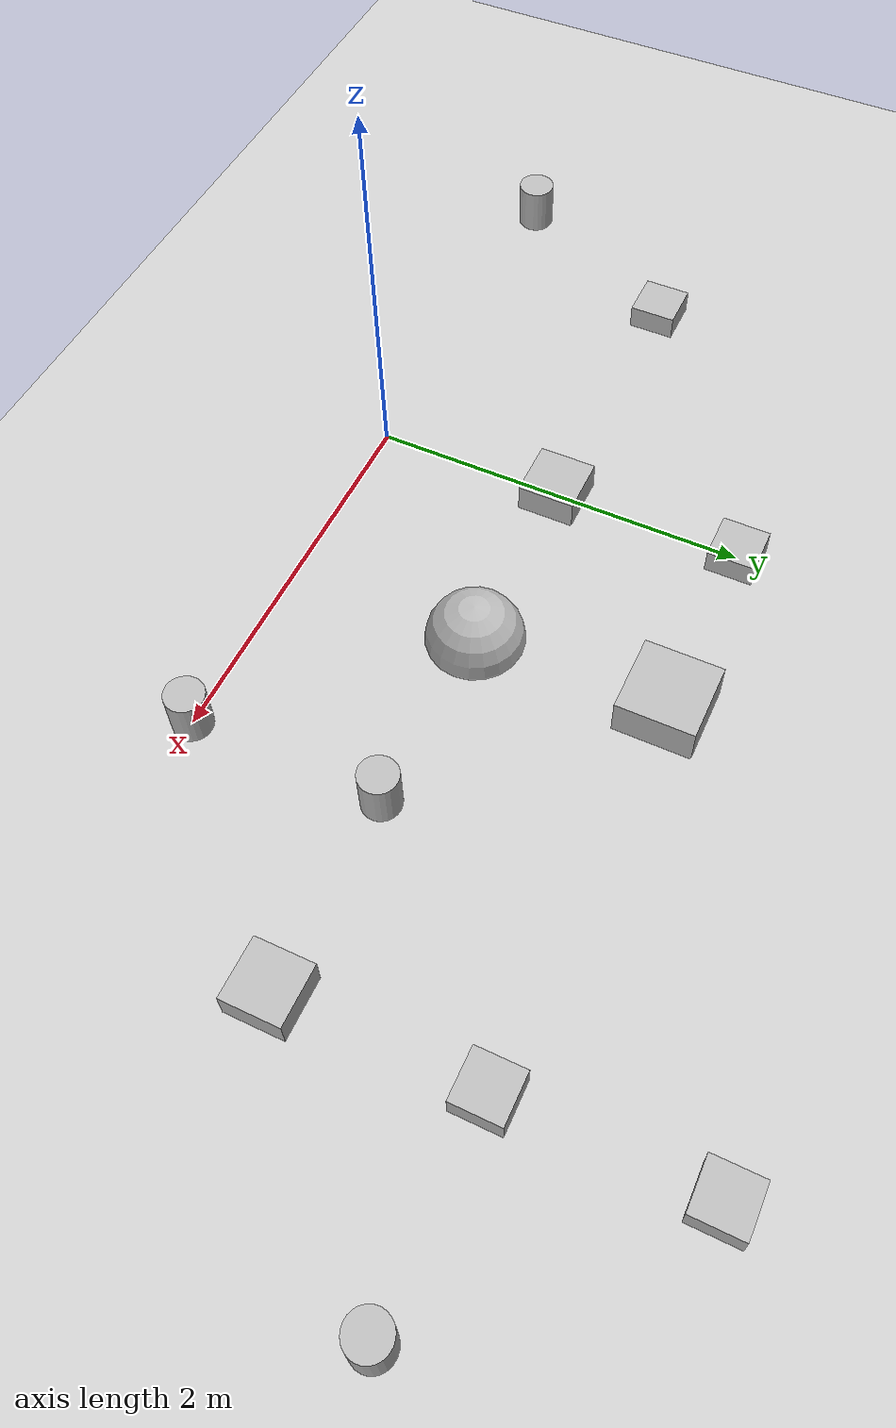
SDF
<sdf version='1.6'>
	<world name='default'>
		<!-- A global light source -->
	    <include>
	      <uri>model://sun</uri>
	    </include>

	    <!-- A ground plane -->
	    <include>
	      <uri>model://ground_plane</uri>
	    </include>

	    <model name='cylinder_1'>
	    	<link name="link">
	    		 <pose frame=''>2 0 0 0 0 0</pose>
	    		 <inertial>
			        <mass>1</mass>
			        <inertia>
			          <ixx>0.166667</ixx>
			          <ixy>0</ixy>
			          <ixz>0</ixz>
			          <iyy>0.166667</iyy>
			          <iyz>0</iyz>
			          <izz>0.166667</izz>
			        </inertia>
			      </inertial>
	    		 <visual name='visual'>
					<geometry>
						<cylinder>
							<radius>0.1</radius>
							<length>0.5</length>
						</cylinder>
					</geometry>
				</visual>
				<collision name='collision'>
					<geometry>
						<cylinder>
							<radius>0.1</radius>
							<length>0.5</length>
						</cylinder>
					</geometry>
				</collision>
			</link>
		</model>

		<model name='cylinder_2'>
	    	<link name="link">
	    		 <pose frame=''>2 1 0 0 0 0</pose>
	    		 <inertial>
			        <mass>1</mass>
			        <inertia>
			          <ixx>0.166667</ixx>
			          <ixy>0</ixy>
			          <ixz>0</ixz>
			          <iyy>0.166667</iyy>
			          <iyz>0</iyz>
			          <izz>0.166667</izz>
			        </inertia>
			      </inertial>
	    		 <visual name='visual'>
					<geometry>
						<cylinder>
							<radius>0.1</radius>
							<length>0.5</length>
						</cylinder>
					</geometry>
				</visual>
				<collision name='collision'>
					<geometry>
						<cylinder>
							<radius>0.1</radius>
							<length>0.5</length>
						</cylinder>
					</geometry>
				</collision>
			</link>
		</model>

		<model name='cylinder_3'>
	    	<link name="link">
	    		 <pose frame=''>4 2 0 0 0 0</pose>
	    		 <inertial>
			        <mass>1</mass>
			        <inertia>
			          <ixx>0.166667</ixx>
			          <ixy>0</ixy>
			          <ixz>0</ixz>
			          <iyy>0.166667</iyy>
			          <iyz>0</iyz>
			          <izz>0.166667</izz>
			        </inertia>
			      </inertial>
	    		 <visual name='visual'>
					<geometry>
						<cylinder>
							<radius>0.1</radius>
							<length>0.5</length>
						</cylinder>
					</geometry>
				</visual>
				<collision name='collision'>
					<geometry>
						<cylinder>
							<radius>0.1</radius>
							<length>0.5</length>
						</cylinder>
					</geometry>
				</collision>
			</link>
		</model>

		<model name='cylinder_4'>
	    	<link name="link">
	    		 <pose frame=''>-2 0 0 0 0 0</pose>
	    		 <inertial>
			        <mass>1</mass>
			        <inertia>
			          <ixx>0.166667</ixx>
			          <ixy>0</ixy>
			          <ixz>0</ixz>
			          <iyy>0.166667</iyy>
			          <iyz>0</iyz>
			          <izz>0.166667</izz>
			        </inertia>
			      </inertial>
	    		 <visual name='visual'>
					<geometry>
						<cylinder>
							<radius>0.1</radius>
							<length>0.5</length>
						</cylinder>
					</geometry>
				</visual>
				<collision name='collision'>
					<geometry>
						<cylinder>
							<radius>0.1</radius>
							<length>0.5</length>
						</cylinder>
					</geometry>
				</collision>
			</link>
		</model>

		<model name='cube_1'>
	    	<link name="link">
	    		 <pose frame=''>3 2 0 0 0 0</pose>
	    		 <inertial>
			        <mass>1</mass>
			        <inertia>
			          <ixx>0.166667</ixx>
			          <ixy>0</ixy>
			          <ixz>0</ixz>
			          <iyy>0.166667</iyy>
			          <iyz>0</iyz>
			          <izz>0.166667</izz>
			        </inertia>
			      </inertial>
	    		 <visual name='visual'>
					<geometry>
						<box>
							<size>0.25 0.25 0.25</size>
						</box>
					</geometry>
				</visual>
				<collision name='collision'>
					<geometry>
						<cylinder>
							<radius>0.1</radius>
							<length>0.5</length>
						</cylinder>
					</geometry>
				</collision>
			</link>
		</model>

		<model name='cube_2'>
	    	<link name="link">
	    		 <pose frame=''>-1.5 1 0 0 0 0</pose>
	    		 <inertial>
			        <mass>1</mass>
			        <inertia>
			          <ixx>0.166667</ixx>
			          <ixy>0</ixy>
			          <ixz>0</ixz>
			          <iyy>0.166667</iyy>
			          <iyz>0</iyz>
			          <izz>0.166667</izz>
			        </inertia>
			      </inertial>
	    		 <visual name='visual'>
					<geometry>
						<box>
							<size>0.25 0.25 0.25</size>
						</box>
					</geometry>
				</visual>
				<collision name='collision'>
					<geometry>
						<cylinder>
							<radius>0.1</radius>
							<length>0.5</length>
						</cylinder>
					</geometry>
				</collision>
			</link>
		</model>

		<model name='cube_3'>
	    	<link name="link">
	    		 <pose frame=''>0 2 0 0 0 0</pose>
	    		 <inertial>
			        <mass>1</mass>
			        <inertia>
			          <ixx>0.166667</ixx>
			          <ixy>0</ixy>
			          <ixz>0</ixz>
			          <iyy>0.166667</iyy>
			          <iyz>0</iyz>
			          <izz>0.166667</izz>
			        </inertia>
			      </inertial>
	    		 <visual name='visual'>
					<geometry>
						<box>
							<size>0.25 0.25 0.25</size>
						</box>
					</geometry>
				</visual>
				<collision name='collision'>
					<geometry>
						<cylinder>
							<radius>0.1</radius>
							<length>0.5</length>
						</cylinder>
					</geometry>
				</collision>
			</link>
		</model>

		<model name='cube_4'>
	    	<link name="link">
	    		 <pose frame=''>3 3 0 0 0 0</pose>
	    		 <inertial>
			        <mass>1</mass>
			        <inertia>
			          <ixx>0.166667</ixx>
			          <ixy>0</ixy>
			          <ixz>0</ixz>
			          <iyy>0.166667</iyy>
			          <iyz>0</iyz>
			          <izz>0.166667</izz>
			        </inertia>
			      </inertial>
	    		 <visual name='visual'>
					<geometry>
						<box>
							<size>0.25 0.25 0.25</size>
						</box>
					</geometry>
				</visual>
				<collision name='collision'>
					<geometry>
						<cylinder>
							<radius>0.1</radius>
							<length>0.5</length>
						</cylinder>
					</geometry>
				</collision>
			</link>
		</model>

		<model name='cube_4'>
	    	<link name="link">
	    		 <pose frame=''>3 1 0 0 0 0</pose>
	    		 <inertial>
			        <mass>1</mass>
			        <inertia>
			          <ixx>0.166667</ixx>
			          <ixy>0</ixy>
			          <ixz>0</ixz>
			          <iyy>0.166667</iyy>
			          <iyz>0</iyz>
			          <izz>0.166667</izz>
			        </inertia>
			      </inertial>
	    		 <visual name='visual'>
					<geometry>
						<box>
							<size>0.3 0.3 0.3</size>
						</box>
					</geometry>
				</visual>
				<collision name='collision'>
					<geometry>
						<cylinder>
							<radius>0.1</radius>
							<length>0.5</length>
						</cylinder>
					</geometry>
				</collision>
			</link>
		</model>

		<model name='cube_5'>
	    	<link name="link">
	    		 <pose frame=''>0 1 0 0 0 0</pose>
	    		 <inertial>
			        <mass>1</mass>
			        <inertia>
			          <ixx>0.166667</ixx>
			          <ixy>0</ixy>
			          <ixz>0</ixz>
			          <iyy>0.166667</iyy>
			          <iyz>0</iyz>
			          <izz>0.166667</izz>
			        </inertia>
			      </inertial>
	    		 <visual name='visual'>
					<geometry>
						<box>
							<size>0.3 0.3 0.3</size>
						</box>
					</geometry>
				</visual>
				<collision name='collision'>
					<geometry>
						<cylinder>
							<radius>0.1</radius>
							<length>0.5</length>
						</cylinder>
					</geometry>
				</collision>
			</link>
		</model>

		<model name='cube_4'>
	    	<link name="link">
	    		 <pose frame=''>1 2 0 0 0 0</pose>
	    		 <inertial>
			        <mass>1</mass>
			        <inertia>
			          <ixx>0.166667</ixx>
			          <ixy>0</ixy>
			          <ixz>0</ixz>
			          <iyy>0.166667</iyy>
			          <iyz>0</iyz>
			          <izz>0.166667</izz>
			        </inertia>
			      </inertial>
	    		 <visual name='visual'>
					<geometry>
						<box>
							<size>0.4 0.4 0.4</size>
						</box>
					</geometry>
				</visual>
				<collision name='collision'>
					<geometry>
						<cylinder>
							<radius>0.1</radius>
							<length>0.5</length>
						</cylinder>
					</geometry>
				</collision>
			</link>
		</model>

		<model name='sphere_1'>
	    	<link name="link">
	    		 <pose frame=''>1 1 0 0 0 0</pose>
	    		 <inertial>
			        <mass>1</mass>
			        <inertia>
			          <ixx>0.166667</ixx>
			          <ixy>0</ixy>
			          <ixz>0</ixz>
			          <iyy>0.166667</iyy>
			          <iyz>0</iyz>
			          <izz>0.166667</izz>
			        </inertia>
			      </inertial>
	    		 <visual name='visual'>
					<geometry>
						<sphere>
							<radius>0.25</radius>
						</sphere>
					</geometry>
				</visual>
				<collision name='collision'>
					<geometry>
						<cylinder>
							<radius>0.1</radius>
							<length>0.5</length>
						</cylinder>
					</geometry>
				</collision>
			</link>
		</model>

	</world>
</sdf>
